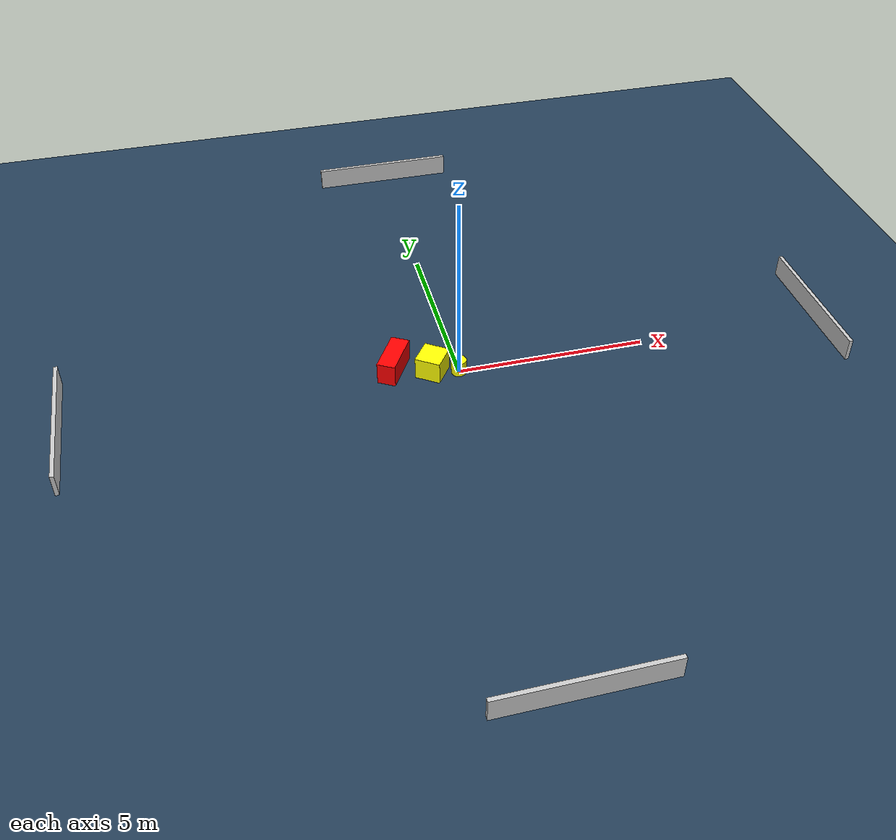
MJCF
<?xml version="1.0" ?>
<mujoco model="generated_environment">
  <option timestep="0.01" integrator="RK4" cone="elliptic"/>
  <default>
    <geom density="1"/>
  </default>
  <asset>
    <texture builtin="gradient" height="3072" name="skybox" rgb1="0.3 0.5 0.7" rgb2="0 0 0" type="skybox" width="512"/>
    <texture builtin="checker" height="300" name="groundplane" rgb1="0.2 0.3 0.4" rgb2="0.1 0.2 0.3" type="2d" width="300"/>
    <material name="groundplane" reflectance="0.2" texrepeat="5 5" texture="groundplane"/>
  </asset>
  <worldbody>
    <light dir="0 0 -1" directional="true" pos="0 0 1.5"/>
    <geom condim="3" friction="0.5 0.005 0.001" material="groundplane" name="floor" pos="0 0 0" size="0 0 0.05" type="plane"/>
    <body name="walls">
      <geom name="wall_1" condim="4" pos="-10.0 0.0 0.3" rgba="0.800000011920929 0.800000011920929 0.800000011920929 1.0" size="0.05 2.0 0.3" type="box"/>
      <geom name="wall_2" condim="4" pos="10.0 0.0 0.3" rgba="0.800000011920929 0.800000011920929 0.800000011920929 1.0" size="0.05 2.0 0.3" type="box"/>
      <geom name="wall_3" condim="4" pos="0.0 -10.0 0.3" rgba="0.800000011920929 0.800000011920929 0.800000011920929 1.0" size="2.0 0.05 0.3" type="box"/>
      <geom name="wall_4" condim="4" pos="0.0 10.0 0.3" rgba="0.800000011920929 0.800000011920929 0.800000011920929 1.0" size="2.0 0.05 0.3" type="box"/>
    </body>
    <body name="robot">
      <joint name="joint_x" type="slide" pos="0 0 0" axis="1 0 0"/>
      <joint name="joint_y" type="slide" pos="0 0 0" axis="0 1 0"/>
      <geom name="robot" type="cylinder" pos="0.0 0.0 0.2" size="0.2 0.2 0.0" mass="5.0" friction="1.0 0.005 0.0001" condim="4" rgba="1.0 1.0 0.0 1.0"/>
    </body>
    <body name="obstacle_1_movable">
      <geom name="obstacle_1_movable" condim="4" pos="-0.663815345000436 0.15256759405028303 0.3" euler="0 0 325.22359624008385" friction="0.0 0.005 0.001" rgba="1.0 1.0 0.0 1.0" size="0.3368370112400474 0.3506678908161016 0.3" type="box" mass="0.1"/>
      <joint type="free"/>
    </body>
    <body name="obstacle_2_static">
      <geom name="obstacle_2_static" condim="4" pos="-1.6185416237504822 0.4721562705973077 0.3" euler="0 0 149.5573799587416" friction="0.0 0.005 0.001" rgba="1.0 0.0 0.0 1.0" size="0.24246443371109447 0.5858322483458377 0.3" type="box"/>
    </body>
  </worldbody>
  <actuator>
    <motor name="actuator_x" joint="joint_x" gear="1" ctrlrange="-1 1"/>
    <motor name="actuator_y" joint="joint_y" gear="1" ctrlrange="-1 1"/>
  </actuator>
</mujoco>
